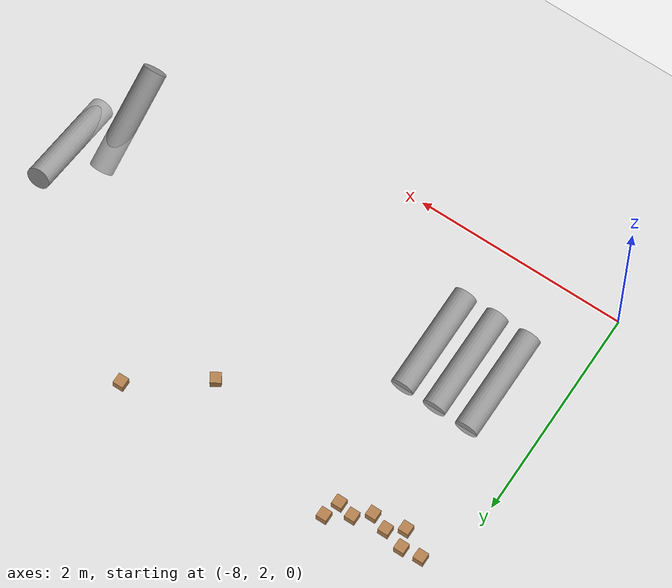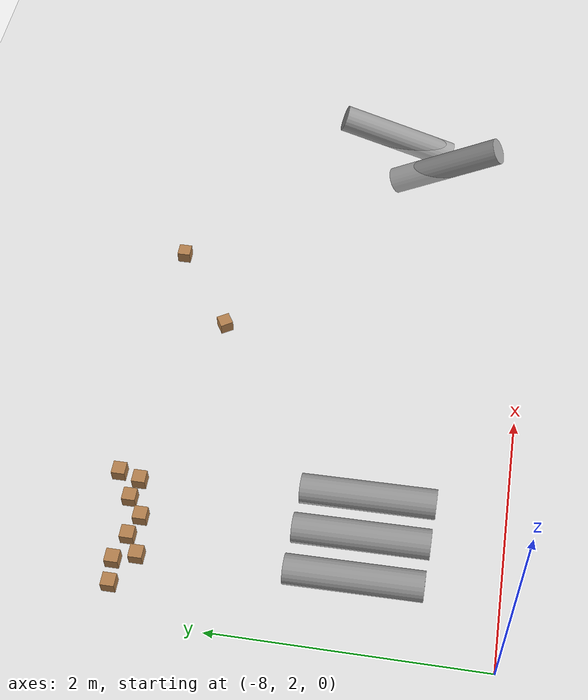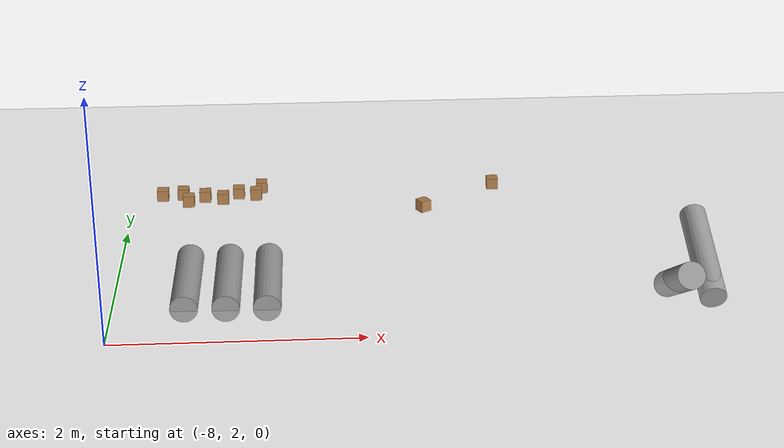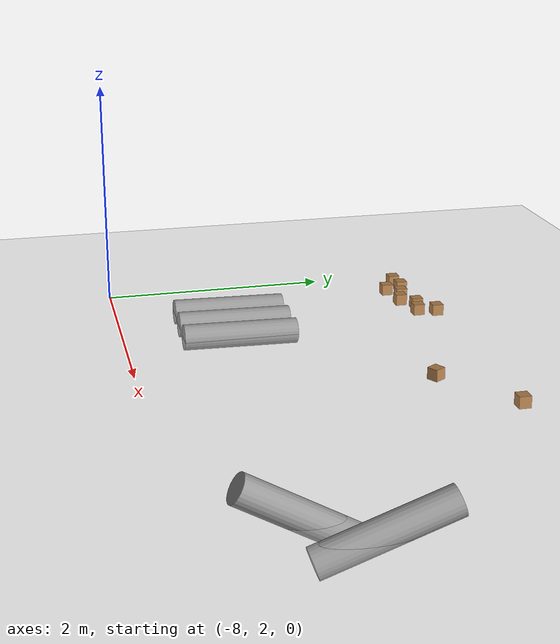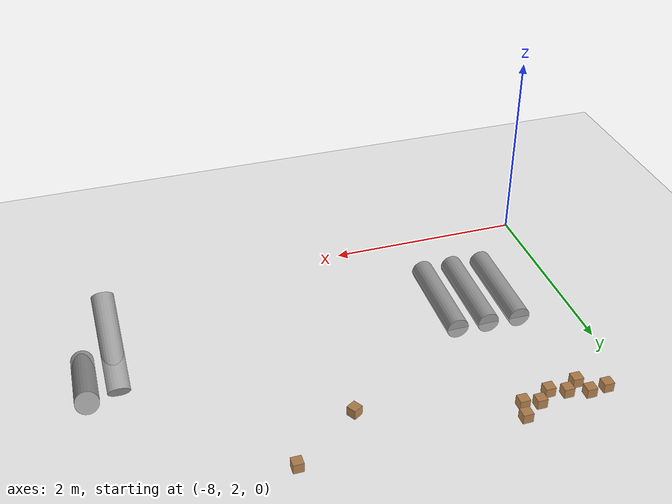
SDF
<sdf version="1.7">
 <world name="default">
  <model name="ground_plane">
   <static>1</static>
   <link name="link">
    <collision name="collision">
     <geometry><plane><normal>0 0 1</normal><size>100 100</size></plane></geometry>
     <surface>
      <contact><collide_bitmask>65535</collide_bitmask></contact>
      <friction><ode><mu>100</mu><mu2>50</mu2></ode></friction>
     </surface>
    </collision>
    <visual name="visual">
     <cast_shadows>0</cast_shadows>
     <geometry><plane><normal>0 0 1</normal><size>100 100</size></plane></geometry>
     <material>
      <script><uri>file://media/materials/scripts/gazebo.material</uri><name>Gazebo/Grey</name></script>
     </material>
    </visual>
   </link>
  </model>
  <model name="unit_cylinder_clone_clone">
   <link name="link">
    <inertial>
     <mass>0.0497635</mass>
     <inertia>
      <ixx>0.00430173</ixx>
      <ixy>0</ixy>
      <ixz>0</ixz>
      <iyy>0.00430173</iyy>
      <iyz>0</iyz>
      <izz>0.00030955</izz>
     </inertia>
    </inertial>
    <pose>0.001965 -0.009653 -0.499784 1.55252 -0 0</pose>
    <visual name="visual">
     <geometry><cylinder><radius>0.111539</radius><length>1</length></cylinder></geometry>
     <material>
      <script><name>Gazebo/Grey</name><uri>file://media/materials/scripts/gazebo.material</uri></script>
      <shader type="pixel"/>
     </material>
    </visual>
    <collision name="collision">
     <geometry><cylinder><radius>0.111539</radius><length>1</length></cylinder></geometry>
     <surface>
      <friction>
       <ode><mu>1</mu><mu2>1</mu2><fdir1>0 0 0</fdir1><slip1>0</slip1><slip2>0</slip2></ode>
       <torsional>
        <coefficient>1</coefficient>
        <patch_radius>0</patch_radius>
        <surface_radius>0</surface_radius>
        <use_patch_radius>1</use_patch_radius>
        <ode><slip>0</slip></ode>
       </torsional>
      </friction>
      <bounce><restitution_coefficient>0</restitution_coefficient><threshold>1e+06</threshold></bounce>
      <contact>
       <collide_without_contact>0</collide_without_contact>
       <collide_without_contact_bitmask>1</collide_without_contact_bitmask>
       <collide_bitmask>1</collide_bitmask>
       <ode>
        <soft_cfm>0</soft_cfm>
        <soft_erp>0.2</soft_erp>
        <kp>1e+13</kp>
        <kd>1</kd>
        <max_vel>0.01</max_vel>
        <min_depth>0</min_depth>
       </ode>
       <bullet>
        <split_impulse>1</split_impulse>
        <split_impulse_penetration_threshold>-0.01</split_impulse_penetration_threshold>
        <soft_cfm>0</soft_cfm>
        <soft_erp>0.2</soft_erp>
        <kp>1e+13</kp>
        <kd>1</kd>
       </bullet>
      </contact>
     </surface>
    </collision>
   </link>
   <static>1</static>
   <pose>-3.16213 3.06519 0.5 0.346982 -0 0</pose>
  </model>
  <model name="unit_cylinder_clone_clone_clone">
   <link name="link">
    <inertial>
     <mass>0.0497635</mass>
     <inertia>
      <ixx>0.00430173</ixx>
      <ixy>0</ixy>
      <ixz>0</ixz>
      <iyy>0.00430173</iyy>
      <iyz>0</iyz>
      <izz>0.00030955</izz>
     </inertia>
    </inertial>
    <pose>0.001965 -0.009653 -0.499784 1.55252 -0 0</pose>
    <visual name="visual">
     <geometry><cylinder><radius>0.111539</radius><length>1</length></cylinder></geometry>
     <material>
      <script><name>Gazebo/Grey</name><uri>file://media/materials/scripts/gazebo.material</uri></script>
      <shader type="pixel"/>
     </material>
    </visual>
    <collision name="collision">
     <geometry><cylinder><radius>0.111539</radius><length>1</length></cylinder></geometry>
     <surface>
      <friction>
       <ode><mu>1</mu><mu2>1</mu2><fdir1>0 0 0</fdir1><slip1>0</slip1><slip2>0</slip2></ode>
       <torsional>
        <coefficient>1</coefficient>
        <patch_radius>0</patch_radius>
        <surface_radius>0</surface_radius>
        <use_patch_radius>1</use_patch_radius>
        <ode><slip>0</slip></ode>
       </torsional>
      </friction>
      <bounce><restitution_coefficient>0</restitution_coefficient><threshold>1e+06</threshold></bounce>
      <contact>
       <collide_without_contact>0</collide_without_contact>
       <collide_without_contact_bitmask>1</collide_without_contact_bitmask>
       <collide_bitmask>1</collide_bitmask>
       <ode>
        <soft_cfm>0</soft_cfm>
        <soft_erp>0.2</soft_erp>
        <kp>1e+13</kp>
        <kd>1</kd>
        <max_vel>0.01</max_vel>
        <min_depth>0</min_depth>
       </ode>
       <bullet>
        <split_impulse>1</split_impulse>
        <split_impulse_penetration_threshold>-0.01</split_impulse_penetration_threshold>
        <soft_cfm>0</soft_cfm>
        <soft_erp>0.2</soft_erp>
        <kp>1e+13</kp>
        <kd>1</kd>
       </bullet>
      </contact>
     </surface>
    </collision>
   </link>
   <static>1</static>
   <pose>-3.45584 3.01997 0.46206 -0.511249 0 0</pose>
  </model>
  <model name="unit_cylinder_clone_7">
   <link name="link">
    <inertial>
     <mass>0.0497635</mass>
     <inertia>
      <ixx>0.00430173</ixx>
      <ixy>0</ixy>
      <ixz>0</ixz>
      <iyy>0.00430173</iyy>
      <iyz>0</iyz>
      <izz>0.00030955</izz>
     </inertia>
    </inertial>
    <pose>0.001965 -0.009653 -0.499784 1.55252 -0 0</pose>
    <visual name="visual">
     <geometry><cylinder><radius>0.111539</radius><length>1</length></cylinder></geometry>
     <material>
      <script><name>Gazebo/Grey</name><uri>file://media/materials/scripts/gazebo.material</uri></script>
      <shader type="pixel"/>
     </material>
    </visual>
    <collision name="collision">
     <geometry><cylinder><radius>0.111539</radius><length>1</length></cylinder></geometry>
     <surface>
      <friction>
       <ode><mu>1</mu><mu2>1</mu2><fdir1>0 0 0</fdir1><slip1>0</slip1><slip2>0</slip2></ode>
       <torsional>
        <coefficient>1</coefficient>
        <patch_radius>0</patch_radius>
        <surface_radius>0</surface_radius>
        <use_patch_radius>1</use_patch_radius>
        <ode><slip>0</slip></ode>
       </torsional>
      </friction>
      <bounce><restitution_coefficient>0</restitution_coefficient><threshold>1e+06</threshold></bounce>
      <contact>
       <collide_without_contact>0</collide_without_contact>
       <collide_without_contact_bitmask>1</collide_without_contact_bitmask>
       <collide_bitmask>1</collide_bitmask>
       <ode>
        <soft_cfm>0</soft_cfm>
        <soft_erp>0.2</soft_erp>
        <kp>1e+13</kp>
        <kd>1</kd>
        <max_vel>0.01</max_vel>
        <min_depth>0</min_depth>
       </ode>
       <bullet>
        <split_impulse>1</split_impulse>
        <split_impulse_penetration_threshold>-0.01</split_impulse_penetration_threshold>
        <soft_cfm>0</soft_cfm>
        <soft_erp>0.2</soft_erp>
        <kp>1e+13</kp>
        <kd>1</kd>
       </bullet>
      </contact>
     </surface>
    </collision>
   </link>
   <static>1</static>
   <pose>-6.78288 3.02429 0.5 0 -0 0</pose>
  </model>
  <model name="unit_cylinder_clone_8">
   <link name="link">
    <inertial>
     <mass>0.0497635</mass>
     <inertia>
      <ixx>0.00430173</ixx>
      <ixy>0</ixy>
      <ixz>0</ixz>
      <iyy>0.00430173</iyy>
      <iyz>0</iyz>
      <izz>0.00030955</izz>
     </inertia>
    </inertial>
    <pose>0.001965 -0.009653 -0.499784 1.55252 -0 0</pose>
    <visual name="visual">
     <geometry><cylinder><radius>0.111539</radius><length>1</length></cylinder></geometry>
     <material>
      <script><name>Gazebo/Grey</name><uri>file://media/materials/scripts/gazebo.material</uri></script>
      <shader type="pixel"/>
     </material>
    </visual>
    <collision name="collision">
     <geometry><cylinder><radius>0.111539</radius><length>1</length></cylinder></geometry>
     <surface>
      <friction>
       <ode><mu>1</mu><mu2>1</mu2><fdir1>0 0 0</fdir1><slip1>0</slip1><slip2>0</slip2></ode>
       <torsional>
        <coefficient>1</coefficient>
        <patch_radius>0</patch_radius>
        <surface_radius>0</surface_radius>
        <use_patch_radius>1</use_patch_radius>
        <ode><slip>0</slip></ode>
       </torsional>
      </friction>
      <bounce><restitution_coefficient>0</restitution_coefficient><threshold>1e+06</threshold></bounce>
      <contact>
       <collide_without_contact>0</collide_without_contact>
       <collide_without_contact_bitmask>1</collide_without_contact_bitmask>
       <collide_bitmask>1</collide_bitmask>
       <ode>
        <soft_cfm>0</soft_cfm>
        <soft_erp>0.2</soft_erp>
        <kp>1e+13</kp>
        <kd>1</kd>
        <max_vel>0.01</max_vel>
        <min_depth>0</min_depth>
       </ode>
       <bullet>
        <split_impulse>1</split_impulse>
        <split_impulse_penetration_threshold>-0.01</split_impulse_penetration_threshold>
        <soft_cfm>0</soft_cfm>
        <soft_erp>0.2</soft_erp>
        <kp>1e+13</kp>
        <kd>1</kd>
       </bullet>
      </contact>
     </surface>
    </collision>
   </link>
   <static>1</static>
   <pose>-7.10924 3.03145 0.5 0 -0 0</pose>
  </model>
  <model name="unit_cylinder_clone_9">
   <link name="link">
    <inertial>
     <mass>0.0497635</mass>
     <inertia>
      <ixx>0.00430173</ixx>
      <ixy>0</ixy>
      <ixz>0</ixz>
      <iyy>0.00430173</iyy>
      <iyz>0</iyz>
      <izz>0.00030955</izz>
     </inertia>
    </inertial>
    <pose>0.001965 -0.009653 -0.499784 1.55252 -0 0</pose>
    <visual name="visual">
     <geometry><cylinder><radius>0.111539</radius><length>1</length></cylinder></geometry>
     <material>
      <script><name>Gazebo/Grey</name><uri>file://media/materials/scripts/gazebo.material</uri></script>
      <shader type="pixel"/>
     </material>
    </visual>
    <collision name="collision">
     <geometry><cylinder><radius>0.111539</radius><length>1</length></cylinder></geometry>
     <surface>
      <friction>
       <ode><mu>1</mu><mu2>1</mu2><fdir1>0 0 0</fdir1><slip1>0</slip1><slip2>0</slip2></ode>
       <torsional>
        <coefficient>1</coefficient>
        <patch_radius>0</patch_radius>
        <surface_radius>0</surface_radius>
        <use_patch_radius>1</use_patch_radius>
        <ode><slip>0</slip></ode>
       </torsional>
      </friction>
      <bounce><restitution_coefficient>0</restitution_coefficient><threshold>1e+06</threshold></bounce>
      <contact>
       <collide_without_contact>0</collide_without_contact>
       <collide_without_contact_bitmask>1</collide_without_contact_bitmask>
       <collide_bitmask>1</collide_bitmask>
       <ode>
        <soft_cfm>0</soft_cfm>
        <soft_erp>0.2</soft_erp>
        <kp>1e+13</kp>
        <kd>1</kd>
        <max_vel>0.01</max_vel>
        <min_depth>0</min_depth>
       </ode>
       <bullet>
        <split_impulse>1</split_impulse>
        <split_impulse_penetration_threshold>-0.01</split_impulse_penetration_threshold>
        <soft_cfm>0</soft_cfm>
        <soft_erp>0.2</soft_erp>
        <kp>1e+13</kp>
        <kd>1</kd>
       </bullet>
      </contact>
     </surface>
    </collision>
   </link>
   <static>1</static>
   <pose>-7.44012 3.04124 0.5 0 -0 0</pose>
  </model>
  <model name="wood_cube_10cm_clone">
   <link name="link">
    <pose>0 0 0.05 0 -0 0</pose>
    <inertial>
     <mass>0.5167</mass>
     <inertia>
      <ixx>0.000861167</ixx>
      <ixy>0</ixy>
      <ixz>0</ixz>
      <iyy>0.000861167</iyy>
      <iyz>0</iyz>
      <izz>0.000861167</izz>
     </inertia>
    </inertial>
    <collision name="collision">
     <geometry><box><size>0.1 0.1 0.1</size></box></geometry>
     <surface>
      <contact>
       <poissons_ratio>0.347</poissons_ratio>
       <elastic_modulus>8.8e+09</elastic_modulus>
       <ode><kp>100000</kp><kd>100</kd><max_vel>100</max_vel><min_depth>0.001</min_depth></ode>
      </contact>
      <friction>
       <torsional>
        <coefficient>1</coefficient>
        <use_patch_radius>0</use_patch_radius>
        <surface_radius>0.01</surface_radius>
       </torsional>
      </friction>
     </surface>
    </collision>
    <visual name="visual">
     <geometry><box><size>0.1 0.1 0.1</size></box></geometry>
     <material>
      <script><uri>file://media/materials/scripts/gazebo.material</uri><name>Gazebo/Wood</name></script>
     </material>
    </visual>
   </link>
   <pose>-4.77393 4.80973 -0.001013 0 -0 0</pose>
  </model>
  <model name="wood_cube_10cm_clone_8">
   <link name="link">
    <pose>0 0 0.05 0 -0 0</pose>
    <inertial>
     <mass>0.5167</mass>
     <inertia>
      <ixx>0.000861167</ixx>
      <ixy>0</ixy>
      <ixz>0</ixz>
      <iyy>0.000861167</iyy>
      <iyz>0</iyz>
      <izz>0.000861167</izz>
     </inertia>
    </inertial>
    <collision name="collision">
     <geometry><box><size>0.1 0.1 0.1</size></box></geometry>
     <surface>
      <contact>
       <poissons_ratio>0.347</poissons_ratio>
       <elastic_modulus>8.8e+09</elastic_modulus>
       <ode><kp>100000</kp><kd>100</kd><max_vel>100</max_vel><min_depth>0.001</min_depth></ode>
      </contact>
      <friction>
       <torsional>
        <coefficient>1</coefficient>
        <use_patch_radius>0</use_patch_radius>
        <surface_radius>0.01</surface_radius>
       </torsional>
      </friction>
     </surface>
    </collision>
    <visual name="visual">
     <geometry><box><size>0.1 0.1 0.1</size></box></geometry>
     <material>
      <script><uri>file://media/materials/scripts/gazebo.material</uri><name>Gazebo/Wood</name></script>
     </material>
    </visual>
   </link>
   <pose>-5.43041 4.34384 0.098987 -3.14159 -0 2.11987</pose>
  </model>
  <model name="wood_cube_10cm_clone_2_clone">
   <link name="link">
    <pose>0 0 0.05 0 -0 0</pose>
    <inertial>
     <mass>0.5167</mass>
     <inertia>
      <ixx>0.000861167</ixx>
      <ixy>0</ixy>
      <ixz>0</ixz>
      <iyy>0.000861167</iyy>
      <iyz>0</iyz>
      <izz>0.000861167</izz>
     </inertia>
    </inertial>
    <collision name="collision">
     <geometry><box><size>0.1 0.1 0.1</size></box></geometry>
     <surface>
      <contact>
       <poissons_ratio>0.347</poissons_ratio>
       <elastic_modulus>8.8e+09</elastic_modulus>
       <ode><kp>100000</kp><kd>100</kd><max_vel>100</max_vel><min_depth>0.001</min_depth></ode>
      </contact>
      <friction>
       <torsional>
        <coefficient>1</coefficient>
        <use_patch_radius>0</use_patch_radius>
        <surface_radius>0.01</surface_radius>
       </torsional>
      </friction>
     </surface>
    </collision>
    <visual name="visual">
     <geometry><box><size>0.1 0.1 0.1</size></box></geometry>
     <material>
      <script><uri>file://media/materials/scripts/gazebo.material</uri><name>Gazebo/Wood</name></script>
     </material>
    </visual>
   </link>
   <pose>-6.86928 4.85228 -0.001013 0 -0 0</pose>
  </model>
  <model name="wood_cube_10cm_clone_2_clone_7">
   <link name="link">
    <pose>0 0 0.05 0 -0 0</pose>
    <inertial>
     <mass>0.5167</mass>
     <inertia>
      <ixx>0.000861167</ixx>
      <ixy>0</ixy>
      <ixz>0</ixz>
      <iyy>0.000861167</iyy>
      <iyz>0</iyz>
      <izz>0.000861167</izz>
     </inertia>
    </inertial>
    <collision name="collision">
     <geometry><box><size>0.1 0.1 0.1</size></box></geometry>
     <surface>
      <contact>
       <poissons_ratio>0.347</poissons_ratio>
       <elastic_modulus>8.8e+09</elastic_modulus>
       <ode><kp>100000</kp><kd>100</kd><max_vel>100</max_vel><min_depth>0.001</min_depth></ode>
      </contact>
      <friction>
       <torsional>
        <coefficient>1</coefficient>
        <use_patch_radius>0</use_patch_radius>
        <surface_radius>0.01</surface_radius>
       </torsional>
      </friction>
     </surface>
    </collision>
    <visual name="visual">
     <geometry><box><size>0.1 0.1 0.1</size></box></geometry>
     <material>
      <script><uri>file://media/materials/scripts/gazebo.material</uri><name>Gazebo/Wood</name></script>
     </material>
    </visual>
   </link>
   <pose>-7.07046 4.7267 -0.001013 0 -0 0</pose>
  </model>
  <model name="wood_cube_10cm_clone_2_clone_15">
   <link name="link">
    <pose>0 0 0.05 0 -0 0</pose>
    <inertial>
     <mass>0.5167</mass>
     <inertia>
      <ixx>0.000861167</ixx>
      <ixy>0</ixy>
      <ixz>0</ixz>
      <iyy>0.000861167</iyy>
      <iyz>0</iyz>
      <izz>0.000861167</izz>
     </inertia>
    </inertial>
    <collision name="collision">
     <geometry><box><size>0.1 0.1 0.1</size></box></geometry>
     <surface>
      <contact>
       <poissons_ratio>0.347</poissons_ratio>
       <elastic_modulus>8.8e+09</elastic_modulus>
       <ode><kp>100000</kp><kd>100</kd><max_vel>100</max_vel><min_depth>0.001</min_depth></ode>
      </contact>
      <friction>
       <torsional>
        <coefficient>1</coefficient>
        <use_patch_radius>0</use_patch_radius>
        <surface_radius>0.01</surface_radius>
       </torsional>
      </friction>
     </surface>
    </collision>
    <visual name="visual">
     <geometry><box><size>0.1 0.1 0.1</size></box></geometry>
     <material>
      <script><uri>file://media/materials/scripts/gazebo.material</uri><name>Gazebo/Wood</name></script>
     </material>
    </visual>
   </link>
   <pose>-7.36887 4.67147 -0.001013 0 -0 0</pose>
  </model>
  <model name="wood_cube_10cm_clone_2_clone_17">
   <link name="link">
    <pose>0 0 0.05 0 -0 0</pose>
    <inertial>
     <mass>0.5167</mass>
     <inertia>
      <ixx>0.000861167</ixx>
      <ixy>0</ixy>
      <ixz>0</ixz>
      <iyy>0.000861167</iyy>
      <iyz>0</iyz>
      <izz>0.000861167</izz>
     </inertia>
    </inertial>
    <collision name="collision">
     <geometry><box><size>0.1 0.1 0.1</size></box></geometry>
     <surface>
      <contact>
       <poissons_ratio>0.347</poissons_ratio>
       <elastic_modulus>8.8e+09</elastic_modulus>
       <ode><kp>100000</kp><kd>100</kd><max_vel>100</max_vel><min_depth>0.001</min_depth></ode>
      </contact>
      <friction>
       <torsional>
        <coefficient>1</coefficient>
        <use_patch_radius>0</use_patch_radius>
        <surface_radius>0.01</surface_radius>
       </torsional>
      </friction>
     </surface>
    </collision>
    <visual name="visual">
     <geometry><box><size>0.1 0.1 0.1</size></box></geometry>
     <material>
      <script><uri>file://media/materials/scripts/gazebo.material</uri><name>Gazebo/Wood</name></script>
     </material>
    </visual>
   </link>
   <pose>-7.56764 4.7326 -0.001013 0 -0 0</pose>
  </model>
  <model name="wood_cube_10cm_clone_2_clone_27">
   <link name="link">
    <pose>0 0 0.05 0 -0 0</pose>
    <inertial>
     <mass>0.5167</mass>
     <inertia>
      <ixx>0.000861167</ixx>
      <ixy>0</ixy>
      <ixz>0</ixz>
      <iyy>0.000861167</iyy>
      <iyz>0</iyz>
      <izz>0.000861167</izz>
     </inertia>
    </inertial>
    <collision name="collision">
     <geometry><box><size>0.1 0.1 0.1</size></box></geometry>
     <surface>
      <contact>
       <poissons_ratio>0.347</poissons_ratio>
       <elastic_modulus>8.8e+09</elastic_modulus>
       <ode><kp>100000</kp><kd>100</kd><max_vel>100</max_vel><min_depth>0.001</min_depth></ode>
      </contact>
      <friction>
       <torsional>
        <coefficient>1</coefficient>
        <use_patch_radius>0</use_patch_radius>
        <surface_radius>0.01</surface_radius>
       </torsional>
      </friction>
     </surface>
    </collision>
    <visual name="visual">
     <geometry><box><size>0.1 0.1 0.1</size></box></geometry>
     <material>
      <script><uri>file://media/materials/scripts/gazebo.material</uri><name>Gazebo/Wood</name></script>
     </material>
    </visual>
   </link>
   <pose>-6.91612 4.68978 -0.001013 0 -0 0</pose>
  </model>
  <model name="wood_cube_10cm_clone_2_clone_28">
   <link name="link">
    <pose>0 0 0.05 0 -0 0</pose>
    <inertial>
     <mass>0.5167</mass>
     <inertia>
      <ixx>0.000861167</ixx>
      <ixy>0</ixy>
      <ixz>0</ixz>
      <iyy>0.000861167</iyy>
      <iyz>0</iyz>
      <izz>0.000861167</izz>
     </inertia>
    </inertial>
    <collision name="collision">
     <geometry><box><size>0.1 0.1 0.1</size></box></geometry>
     <surface>
      <contact>
       <poissons_ratio>0.347</poissons_ratio>
       <elastic_modulus>8.8e+09</elastic_modulus>
       <ode><kp>100000</kp><kd>100</kd><max_vel>100</max_vel><min_depth>0.001</min_depth></ode>
      </contact>
      <friction>
       <torsional>
        <coefficient>1</coefficient>
        <use_patch_radius>0</use_patch_radius>
        <surface_radius>0.01</surface_radius>
       </torsional>
      </friction>
     </surface>
    </collision>
    <visual name="visual">
     <geometry><box><size>0.1 0.1 0.1</size></box></geometry>
     <material>
      <script><uri>file://media/materials/scripts/gazebo.material</uri><name>Gazebo/Wood</name></script>
     </material>
    </visual>
   </link>
   <pose>-7.20788 4.61482 -0.001013 0 -0 0</pose>
  </model>
  <model name="wood_cube_10cm_clone_2_clone_29">
   <link name="link">
    <pose>0 0 0.05 0 -0 0</pose>
    <inertial>
     <mass>0.5167</mass>
     <inertia>
      <ixx>0.000861167</ixx>
      <ixy>0</ixy>
      <ixz>0</ixz>
      <iyy>0.000861167</iyy>
      <iyz>0</iyz>
      <izz>0.000861167</izz>
     </inertia>
    </inertial>
    <collision name="collision">
     <geometry><box><size>0.1 0.1 0.1</size></box></geometry>
     <surface>
      <contact>
       <poissons_ratio>0.347</poissons_ratio>
       <elastic_modulus>8.8e+09</elastic_modulus>
       <ode><kp>100000</kp><kd>100</kd><max_vel>100</max_vel><min_depth>0.001</min_depth></ode>
      </contact>
      <friction>
       <torsional>
        <coefficient>1</coefficient>
        <use_patch_radius>0</use_patch_radius>
        <surface_radius>0.01</surface_radius>
       </torsional>
      </friction>
     </surface>
    </collision>
    <visual name="visual">
     <geometry><box><size>0.1 0.1 0.1</size></box></geometry>
     <material>
      <script><uri>file://media/materials/scripts/gazebo.material</uri><name>Gazebo/Wood</name></script>
     </material>
    </visual>
   </link>
   <pose>-7.51038 4.57344 -0.001013 0 -0 0</pose>
  </model>
  <model name="wood_cube_10cm_clone_2_clone_30">
   <link name="link">
    <pose>0 0 0.05 0 -0 0</pose>
    <inertial>
     <mass>0.5167</mass>
     <inertia>
      <ixx>0.000861167</ixx>
      <ixy>0</ixy>
      <ixz>0</ixz>
      <iyy>0.000861167</iyy>
      <iyz>0</iyz>
      <izz>0.000861167</izz>
     </inertia>
    </inertial>
    <collision name="collision">
     <geometry><box><size>0.1 0.1 0.1</size></box></geometry>
     <surface>
      <contact>
       <poissons_ratio>0.347</poissons_ratio>
       <elastic_modulus>8.8e+09</elastic_modulus>
       <ode><kp>100000</kp><kd>100</kd><max_vel>100</max_vel><min_depth>0.001</min_depth></ode>
      </contact>
      <friction>
       <torsional>
        <coefficient>1</coefficient>
        <use_patch_radius>0</use_patch_radius>
        <surface_radius>0.01</surface_radius>
       </torsional>
      </friction>
     </surface>
    </collision>
    <visual name="visual">
     <geometry><box><size>0.1 0.1 0.1</size></box></geometry>
     <material>
      <script><uri>file://media/materials/scripts/gazebo.material</uri><name>Gazebo/Wood</name></script>
     </material>
    </visual>
   </link>
   <pose>-7.74881 4.71359 -0.001013 0 -0 0</pose>
  </model>
 </world>
</sdf>
